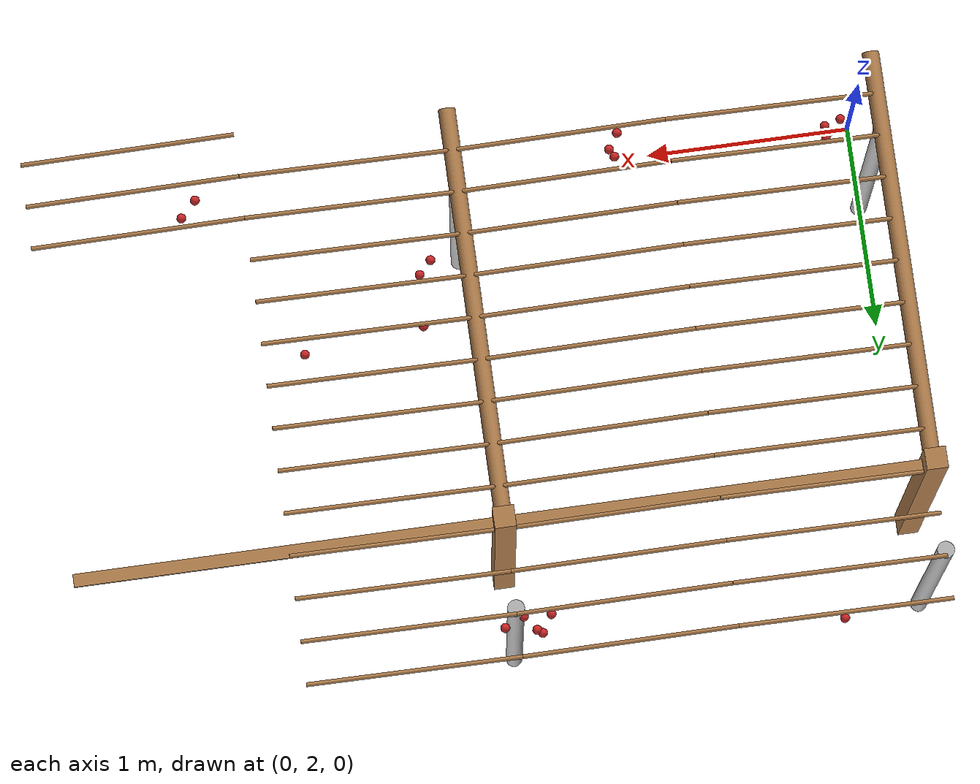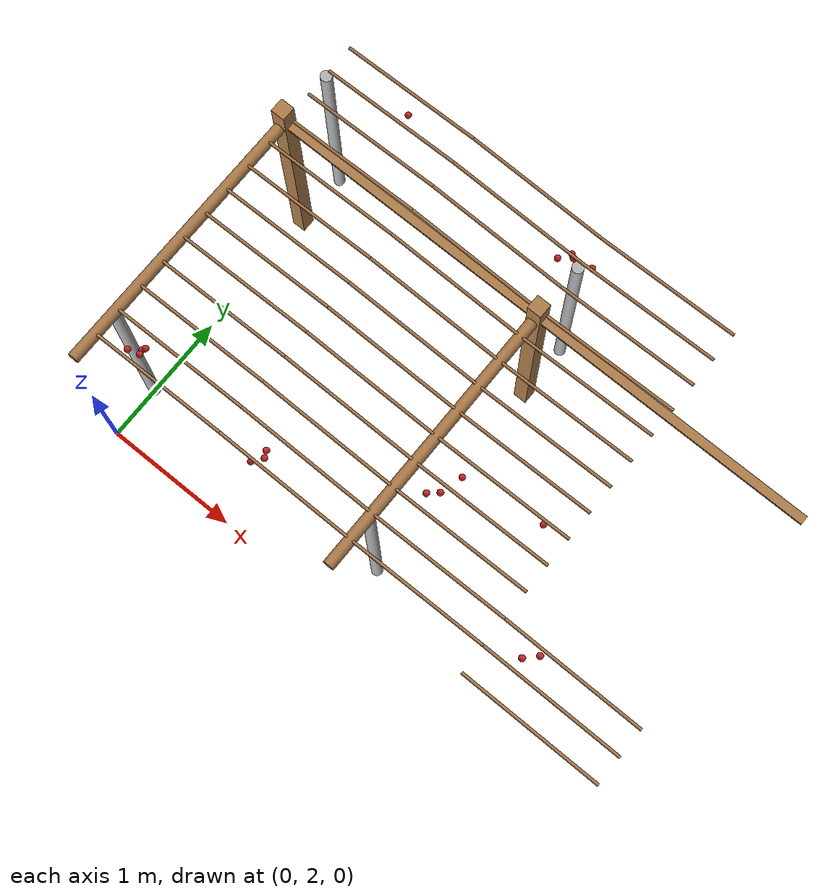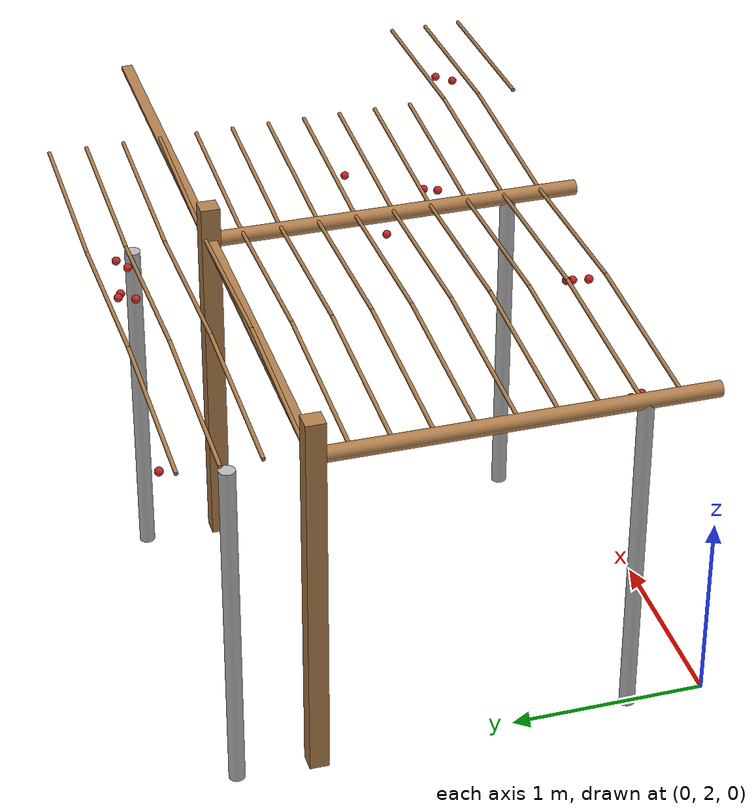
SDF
<sdf version="1.4">
 <model name="pergola">
  <include><name>post_2</name><pose>0.0 4.0 0 0 0 0</pose><uri>model://post</uri></include>
  <include><name>post_13</name><pose>2.0 4.0 0 0 0 0</pose><uri>model://post</uri></include>
  <link name="beam_2">
   <pose>1.0 4.0 1.81 0 0 0</pose>
   <collision name="collision"><geometry><box><size>2.0 0.06 0.02</size></box></geometry></collision>
   <visual name="visual">
    <geometry><box><size>2.0 0.06 0.02</size></box></geometry>
    <material><script><name>Gazebo/Wood</name></script></material>
   </visual>
   <inertial>
    <mass>5</mass>
    <inertia>
     <ixx>0.0016666666666666668</ixx>
     <ixy>0.0</ixy>
     <ixz>0.0</ixz>
     <iyy>1.6681666666666664</iyy>
     <iyz>0.0</iyz>
     <izz>1.6668333333333332</izz>
    </inertia>
   </inertial>
  </link>
  <link name="beam_13">
   <pose>3.0 4.0 1.81 0 0 0</pose>
   <collision name="collision"><geometry><box><size>2.0 0.06 0.02</size></box></geometry></collision>
   <visual name="visual">
    <geometry><box><size>2.0 0.06 0.02</size></box></geometry>
    <material><script><name>Gazebo/Wood</name></script></material>
   </visual>
   <inertial>
    <mass>5</mass>
    <inertia>
     <ixx>0.0016666666666666668</ixx>
     <ixy>0.0</ixy>
     <ixz>0.0</ixz>
     <iyy>1.6681666666666664</iyy>
     <iyz>0.0</iyz>
     <izz>1.6668333333333332</izz>
    </inertia>
   </inertial>
  </link>
  <include><name>tree_1</name><pose>0.0 2.4 0 0 0 0</pose><uri>model://tree_trunk</uri></include>
  <include><name>tree_2</name><pose>0.0 4.4 0 0 0 0</pose><uri>model://tree_trunk</uri></include>
  <include><name>tree_11</name><pose>2.0 2.4 0 0 0 0</pose><uri>model://tree_trunk</uri></include>
  <include><name>tree_12</name><pose>2.0 4.4 0 0 0 0</pose><uri>model://tree_trunk</uri></include>
  <link name="baseBranch_1">
   <pose>0.0 3.0 1.8 1.5707963267948966 0 0</pose>
   <collision name="collision">
    <geometry><cylinder><radius>0.04</radius><length>1.94</length></cylinder></geometry>
   </collision>
   <visual name="visual">
    <geometry><cylinder><radius>0.04</radius><length>1.94</length></cylinder></geometry>
    <material><script><name>Gazebo/WoodFloor</name></script></material>
   </visual>
   <inertial>
    <mass>10</mass>
    <inertia>
     <ixx>3.140333333333333</ixx>
     <ixy>0.0</ixy>
     <ixz>0.0</ixz>
     <iyy>3.140333333333333</iyy>
     <iyz>0.0</iyz>
     <izz>0.008</izz>
    </inertia>
   </inertial>
  </link>
  <link name="baseBranch_11">
   <pose>2.0 3.0 1.8 1.5707963267948966 0 0</pose>
   <collision name="collision">
    <geometry><cylinder><radius>0.04</radius><length>1.94</length></cylinder></geometry>
   </collision>
   <visual name="visual">
    <geometry><cylinder><radius>0.04</radius><length>1.94</length></cylinder></geometry>
    <material><script><name>Gazebo/WoodFloor</name></script></material>
   </visual>
   <inertial>
    <mass>10</mass>
    <inertia>
     <ixx>3.140333333333333</ixx>
     <ixy>0.0</ixy>
     <ixz>0.0</ixz>
     <iyy>3.140333333333333</iyy>
     <iyz>0.0</iyz>
     <izz>0.008</izz>
    </inertia>
   </inertial>
  </link>
  <link name="vine_22">
   <pose>0.5 2.23 1.85 0 1.5208379310729538 0</pose>
   <collision name="collision">
    <geometry><cylinder><radius>0.01</radius><length>1.0012492197250393</length></cylinder></geometry>
   </collision>
   <visual name="visual">
    <geometry><cylinder><radius>0.01</radius><length>1.0012492197250393</length></cylinder></geometry>
    <material><script><name>Gazebo/WoodFloor</name></script></material>
   </visual>
   <inertial>
    <mass>5</mass>
    <inertia>
     <ixx>0.41783333333333345</ixx>
     <ixy>0.0</ixy>
     <ixz>0.0</ixz>
     <iyy>0.41783333333333345</iyy>
     <iyz>0.0</iyz>
     <izz>0.00025</izz>
    </inertia>
   </inertial>
  </link>
  <link name="vine_23">
   <pose>1.5 2.23 1.85 0 -1.5208379310729538 0</pose>
   <collision name="collision">
    <geometry><cylinder><radius>0.01</radius><length>1.0012492197250393</length></cylinder></geometry>
   </collision>
   <visual name="visual">
    <geometry><cylinder><radius>0.01</radius><length>1.0012492197250393</length></cylinder></geometry>
    <material><script><name>Gazebo/WoodFloor</name></script></material>
   </visual>
   <inertial>
    <mass>5</mass>
    <inertia>
     <ixx>0.41783333333333345</ixx>
     <ixy>0.0</ixy>
     <ixz>0.0</ixz>
     <iyy>0.41783333333333345</iyy>
     <iyz>0.0</iyz>
     <izz>0.00025</izz>
    </inertia>
   </inertial>
  </link>
  <link name="vine_24">
   <pose>0.5 2.43 1.85 0 1.5208379310729538 0</pose>
   <collision name="collision">
    <geometry><cylinder><radius>0.01</radius><length>1.0012492197250393</length></cylinder></geometry>
   </collision>
   <visual name="visual">
    <geometry><cylinder><radius>0.01</radius><length>1.0012492197250393</length></cylinder></geometry>
    <material><script><name>Gazebo/WoodFloor</name></script></material>
   </visual>
   <inertial>
    <mass>5</mass>
    <inertia>
     <ixx>0.41783333333333345</ixx>
     <ixy>0.0</ixy>
     <ixz>0.0</ixz>
     <iyy>0.41783333333333345</iyy>
     <iyz>0.0</iyz>
     <izz>0.00025</izz>
    </inertia>
   </inertial>
  </link>
  <link name="vine_25">
   <pose>1.5 2.43 1.85 0 -1.5208379310729538 0</pose>
   <collision name="collision">
    <geometry><cylinder><radius>0.01</radius><length>1.0012492197250393</length></cylinder></geometry>
   </collision>
   <visual name="visual">
    <geometry><cylinder><radius>0.01</radius><length>1.0012492197250393</length></cylinder></geometry>
    <material><script><name>Gazebo/WoodFloor</name></script></material>
   </visual>
   <inertial>
    <mass>5</mass>
    <inertia>
     <ixx>0.41783333333333345</ixx>
     <ixy>0.0</ixy>
     <ixz>0.0</ixz>
     <iyy>0.41783333333333345</iyy>
     <iyz>0.0</iyz>
     <izz>0.00025</izz>
    </inertia>
   </inertial>
  </link>
  <link name="vine_26">
   <pose>0.5 2.63 1.85 0 1.5208379310729538 0</pose>
   <collision name="collision">
    <geometry><cylinder><radius>0.01</radius><length>1.0012492197250393</length></cylinder></geometry>
   </collision>
   <visual name="visual">
    <geometry><cylinder><radius>0.01</radius><length>1.0012492197250393</length></cylinder></geometry>
    <material><script><name>Gazebo/WoodFloor</name></script></material>
   </visual>
   <inertial>
    <mass>5</mass>
    <inertia>
     <ixx>0.41783333333333345</ixx>
     <ixy>0.0</ixy>
     <ixz>0.0</ixz>
     <iyy>0.41783333333333345</iyy>
     <iyz>0.0</iyz>
     <izz>0.00025</izz>
    </inertia>
   </inertial>
  </link>
  <link name="vine_27">
   <pose>1.5 2.63 1.85 0 -1.5208379310729538 0</pose>
   <collision name="collision">
    <geometry><cylinder><radius>0.01</radius><length>1.0012492197250393</length></cylinder></geometry>
   </collision>
   <visual name="visual">
    <geometry><cylinder><radius>0.01</radius><length>1.0012492197250393</length></cylinder></geometry>
    <material><script><name>Gazebo/WoodFloor</name></script></material>
   </visual>
   <inertial>
    <mass>5</mass>
    <inertia>
     <ixx>0.41783333333333345</ixx>
     <ixy>0.0</ixy>
     <ixz>0.0</ixz>
     <iyy>0.41783333333333345</iyy>
     <iyz>0.0</iyz>
     <izz>0.00025</izz>
    </inertia>
   </inertial>
  </link>
  <link name="vine_28">
   <pose>0.5 2.83 1.85 0 1.5208379310729538 0</pose>
   <collision name="collision">
    <geometry><cylinder><radius>0.01</radius><length>1.0012492197250393</length></cylinder></geometry>
   </collision>
   <visual name="visual">
    <geometry><cylinder><radius>0.01</radius><length>1.0012492197250393</length></cylinder></geometry>
    <material><script><name>Gazebo/WoodFloor</name></script></material>
   </visual>
   <inertial>
    <mass>5</mass>
    <inertia>
     <ixx>0.41783333333333345</ixx>
     <ixy>0.0</ixy>
     <ixz>0.0</ixz>
     <iyy>0.41783333333333345</iyy>
     <iyz>0.0</iyz>
     <izz>0.00025</izz>
    </inertia>
   </inertial>
  </link>
  <link name="vine_29">
   <pose>1.5 2.83 1.85 0 -1.5208379310729538 0</pose>
   <collision name="collision">
    <geometry><cylinder><radius>0.01</radius><length>1.0012492197250393</length></cylinder></geometry>
   </collision>
   <visual name="visual">
    <geometry><cylinder><radius>0.01</radius><length>1.0012492197250393</length></cylinder></geometry>
    <material><script><name>Gazebo/WoodFloor</name></script></material>
   </visual>
   <inertial>
    <mass>5</mass>
    <inertia>
     <ixx>0.41783333333333345</ixx>
     <ixy>0.0</ixy>
     <ixz>0.0</ixz>
     <iyy>0.41783333333333345</iyy>
     <iyz>0.0</iyz>
     <izz>0.00025</izz>
    </inertia>
   </inertial>
  </link>
  <link name="vine_30">
   <pose>0.5 3.03 1.85 0 1.5208379310729538 0</pose>
   <collision name="collision">
    <geometry><cylinder><radius>0.01</radius><length>1.0012492197250393</length></cylinder></geometry>
   </collision>
   <visual name="visual">
    <geometry><cylinder><radius>0.01</radius><length>1.0012492197250393</length></cylinder></geometry>
    <material><script><name>Gazebo/WoodFloor</name></script></material>
   </visual>
   <inertial>
    <mass>5</mass>
    <inertia>
     <ixx>0.41783333333333345</ixx>
     <ixy>0.0</ixy>
     <ixz>0.0</ixz>
     <iyy>0.41783333333333345</iyy>
     <iyz>0.0</iyz>
     <izz>0.00025</izz>
    </inertia>
   </inertial>
  </link>
  <link name="vine_31">
   <pose>1.5 3.03 1.85 0 -1.5208379310729538 0</pose>
   <collision name="collision">
    <geometry><cylinder><radius>0.01</radius><length>1.0012492197250393</length></cylinder></geometry>
   </collision>
   <visual name="visual">
    <geometry><cylinder><radius>0.01</radius><length>1.0012492197250393</length></cylinder></geometry>
    <material><script><name>Gazebo/WoodFloor</name></script></material>
   </visual>
   <inertial>
    <mass>5</mass>
    <inertia>
     <ixx>0.41783333333333345</ixx>
     <ixy>0.0</ixy>
     <ixz>0.0</ixz>
     <iyy>0.41783333333333345</iyy>
     <iyz>0.0</iyz>
     <izz>0.00025</izz>
    </inertia>
   </inertial>
  </link>
  <link name="vine_32">
   <pose>0.5 3.23 1.85 0 1.5208379310729538 0</pose>
   <collision name="collision">
    <geometry><cylinder><radius>0.01</radius><length>1.0012492197250393</length></cylinder></geometry>
   </collision>
   <visual name="visual">
    <geometry><cylinder><radius>0.01</radius><length>1.0012492197250393</length></cylinder></geometry>
    <material><script><name>Gazebo/WoodFloor</name></script></material>
   </visual>
   <inertial>
    <mass>5</mass>
    <inertia>
     <ixx>0.41783333333333345</ixx>
     <ixy>0.0</ixy>
     <ixz>0.0</ixz>
     <iyy>0.41783333333333345</iyy>
     <iyz>0.0</iyz>
     <izz>0.00025</izz>
    </inertia>
   </inertial>
  </link>
  <link name="vine_33">
   <pose>1.5 3.23 1.85 0 -1.5208379310729538 0</pose>
   <collision name="collision">
    <geometry><cylinder><radius>0.01</radius><length>1.0012492197250393</length></cylinder></geometry>
   </collision>
   <visual name="visual">
    <geometry><cylinder><radius>0.01</radius><length>1.0012492197250393</length></cylinder></geometry>
    <material><script><name>Gazebo/WoodFloor</name></script></material>
   </visual>
   <inertial>
    <mass>5</mass>
    <inertia>
     <ixx>0.41783333333333345</ixx>
     <ixy>0.0</ixy>
     <ixz>0.0</ixz>
     <iyy>0.41783333333333345</iyy>
     <iyz>0.0</iyz>
     <izz>0.00025</izz>
    </inertia>
   </inertial>
  </link>
  <link name="vine_34">
   <pose>0.5 3.43 1.85 0 1.5208379310729538 0</pose>
   <collision name="collision">
    <geometry><cylinder><radius>0.01</radius><length>1.0012492197250393</length></cylinder></geometry>
   </collision>
   <visual name="visual">
    <geometry><cylinder><radius>0.01</radius><length>1.0012492197250393</length></cylinder></geometry>
    <material><script><name>Gazebo/WoodFloor</name></script></material>
   </visual>
   <inertial>
    <mass>5</mass>
    <inertia>
     <ixx>0.41783333333333345</ixx>
     <ixy>0.0</ixy>
     <ixz>0.0</ixz>
     <iyy>0.41783333333333345</iyy>
     <iyz>0.0</iyz>
     <izz>0.00025</izz>
    </inertia>
   </inertial>
  </link>
  <link name="vine_35">
   <pose>1.5 3.43 1.85 0 -1.5208379310729538 0</pose>
   <collision name="collision">
    <geometry><cylinder><radius>0.01</radius><length>1.0012492197250393</length></cylinder></geometry>
   </collision>
   <visual name="visual">
    <geometry><cylinder><radius>0.01</radius><length>1.0012492197250393</length></cylinder></geometry>
    <material><script><name>Gazebo/WoodFloor</name></script></material>
   </visual>
   <inertial>
    <mass>5</mass>
    <inertia>
     <ixx>0.41783333333333345</ixx>
     <ixy>0.0</ixy>
     <ixz>0.0</ixz>
     <iyy>0.41783333333333345</iyy>
     <iyz>0.0</iyz>
     <izz>0.00025</izz>
    </inertia>
   </inertial>
  </link>
  <link name="vine_36">
   <pose>0.5 3.63 1.85 0 1.5208379310729538 0</pose>
   <collision name="collision">
    <geometry><cylinder><radius>0.01</radius><length>1.0012492197250393</length></cylinder></geometry>
   </collision>
   <visual name="visual">
    <geometry><cylinder><radius>0.01</radius><length>1.0012492197250393</length></cylinder></geometry>
    <material><script><name>Gazebo/WoodFloor</name></script></material>
   </visual>
   <inertial>
    <mass>5</mass>
    <inertia>
     <ixx>0.41783333333333345</ixx>
     <ixy>0.0</ixy>
     <ixz>0.0</ixz>
     <iyy>0.41783333333333345</iyy>
     <iyz>0.0</iyz>
     <izz>0.00025</izz>
    </inertia>
   </inertial>
  </link>
  <link name="vine_37">
   <pose>1.5 3.63 1.85 0 -1.5208379310729538 0</pose>
   <collision name="collision">
    <geometry><cylinder><radius>0.01</radius><length>1.0012492197250393</length></cylinder></geometry>
   </collision>
   <visual name="visual">
    <geometry><cylinder><radius>0.01</radius><length>1.0012492197250393</length></cylinder></geometry>
    <material><script><name>Gazebo/WoodFloor</name></script></material>
   </visual>
   <inertial>
    <mass>5</mass>
    <inertia>
     <ixx>0.41783333333333345</ixx>
     <ixy>0.0</ixy>
     <ixz>0.0</ixz>
     <iyy>0.41783333333333345</iyy>
     <iyz>0.0</iyz>
     <izz>0.00025</izz>
    </inertia>
   </inertial>
  </link>
  <link name="vine_38">
   <pose>0.5 3.83 1.85 0 1.5208379310729538 0</pose>
   <collision name="collision">
    <geometry><cylinder><radius>0.01</radius><length>1.0012492197250393</length></cylinder></geometry>
   </collision>
   <visual name="visual">
    <geometry><cylinder><radius>0.01</radius><length>1.0012492197250393</length></cylinder></geometry>
    <material><script><name>Gazebo/WoodFloor</name></script></material>
   </visual>
   <inertial>
    <mass>5</mass>
    <inertia>
     <ixx>0.41783333333333345</ixx>
     <ixy>0.0</ixy>
     <ixz>0.0</ixz>
     <iyy>0.41783333333333345</iyy>
     <iyz>0.0</iyz>
     <izz>0.00025</izz>
    </inertia>
   </inertial>
  </link>
  <link name="vine_39">
   <pose>1.5 3.83 1.85 0 -1.5208379310729538 0</pose>
   <collision name="collision">
    <geometry><cylinder><radius>0.01</radius><length>1.0012492197250393</length></cylinder></geometry>
   </collision>
   <visual name="visual">
    <geometry><cylinder><radius>0.01</radius><length>1.0012492197250393</length></cylinder></geometry>
    <material><script><name>Gazebo/WoodFloor</name></script></material>
   </visual>
   <inertial>
    <mass>5</mass>
    <inertia>
     <ixx>0.41783333333333345</ixx>
     <ixy>0.0</ixy>
     <ixz>0.0</ixz>
     <iyy>0.41783333333333345</iyy>
     <iyz>0.0</iyz>
     <izz>0.00025</izz>
    </inertia>
   </inertial>
  </link>
  <link name="vine_40">
   <pose>0.5 4.03 1.85 0 1.5208379310729538 0</pose>
   <collision name="collision">
    <geometry><cylinder><radius>0.01</radius><length>1.0012492197250393</length></cylinder></geometry>
   </collision>
   <visual name="visual">
    <geometry><cylinder><radius>0.01</radius><length>1.0012492197250393</length></cylinder></geometry>
    <material><script><name>Gazebo/WoodFloor</name></script></material>
   </visual>
   <inertial>
    <mass>5</mass>
    <inertia>
     <ixx>0.41783333333333345</ixx>
     <ixy>0.0</ixy>
     <ixz>0.0</ixz>
     <iyy>0.41783333333333345</iyy>
     <iyz>0.0</iyz>
     <izz>0.00025</izz>
    </inertia>
   </inertial>
  </link>
  <link name="vine_41">
   <pose>1.5 4.03 1.85 0 -1.5208379310729538 0</pose>
   <collision name="collision">
    <geometry><cylinder><radius>0.01</radius><length>1.0012492197250393</length></cylinder></geometry>
   </collision>
   <visual name="visual">
    <geometry><cylinder><radius>0.01</radius><length>1.0012492197250393</length></cylinder></geometry>
    <material><script><name>Gazebo/WoodFloor</name></script></material>
   </visual>
   <inertial>
    <mass>5</mass>
    <inertia>
     <ixx>0.41783333333333345</ixx>
     <ixy>0.0</ixy>
     <ixz>0.0</ixz>
     <iyy>0.41783333333333345</iyy>
     <iyz>0.0</iyz>
     <izz>0.00025</izz>
    </inertia>
   </inertial>
  </link>
  <link name="vine_42">
   <pose>0.5 4.23 1.85 0 1.5208379310729538 0</pose>
   <collision name="collision">
    <geometry><cylinder><radius>0.01</radius><length>1.0012492197250393</length></cylinder></geometry>
   </collision>
   <visual name="visual">
    <geometry><cylinder><radius>0.01</radius><length>1.0012492197250393</length></cylinder></geometry>
    <material><script><name>Gazebo/WoodFloor</name></script></material>
   </visual>
   <inertial>
    <mass>5</mass>
    <inertia>
     <ixx>0.41783333333333345</ixx>
     <ixy>0.0</ixy>
     <ixz>0.0</ixz>
     <iyy>0.41783333333333345</iyy>
     <iyz>0.0</iyz>
     <izz>0.00025</izz>
    </inertia>
   </inertial>
  </link>
  <link name="vine_43">
   <pose>1.5 4.23 1.85 0 -1.5208379310729538 0</pose>
   <collision name="collision">
    <geometry><cylinder><radius>0.01</radius><length>1.0012492197250393</length></cylinder></geometry>
   </collision>
   <visual name="visual">
    <geometry><cylinder><radius>0.01</radius><length>1.0012492197250393</length></cylinder></geometry>
    <material><script><name>Gazebo/WoodFloor</name></script></material>
   </visual>
   <inertial>
    <mass>5</mass>
    <inertia>
     <ixx>0.41783333333333345</ixx>
     <ixy>0.0</ixy>
     <ixz>0.0</ixz>
     <iyy>0.41783333333333345</iyy>
     <iyz>0.0</iyz>
     <izz>0.00025</izz>
    </inertia>
   </inertial>
  </link>
  <link name="vine_44">
   <pose>0.5 4.430000000000001 1.85 0 1.5208379310729538 0</pose>
   <collision name="collision">
    <geometry><cylinder><radius>0.01</radius><length>1.0012492197250393</length></cylinder></geometry>
   </collision>
   <visual name="visual">
    <geometry><cylinder><radius>0.01</radius><length>1.0012492197250393</length></cylinder></geometry>
    <material><script><name>Gazebo/WoodFloor</name></script></material>
   </visual>
   <inertial>
    <mass>5</mass>
    <inertia>
     <ixx>0.41783333333333345</ixx>
     <ixy>0.0</ixy>
     <ixz>0.0</ixz>
     <iyy>0.41783333333333345</iyy>
     <iyz>0.0</iyz>
     <izz>0.00025</izz>
    </inertia>
   </inertial>
  </link>
  <link name="vine_45">
   <pose>1.5 4.430000000000001 1.85 0 -1.5208379310729538 0</pose>
   <collision name="collision">
    <geometry><cylinder><radius>0.01</radius><length>1.0012492197250393</length></cylinder></geometry>
   </collision>
   <visual name="visual">
    <geometry><cylinder><radius>0.01</radius><length>1.0012492197250393</length></cylinder></geometry>
    <material><script><name>Gazebo/WoodFloor</name></script></material>
   </visual>
   <inertial>
    <mass>5</mass>
    <inertia>
     <ixx>0.41783333333333345</ixx>
     <ixy>0.0</ixy>
     <ixz>0.0</ixz>
     <iyy>0.41783333333333345</iyy>
     <iyz>0.0</iyz>
     <izz>0.00025</izz>
    </inertia>
   </inertial>
  </link>
  <link name="vine_46">
   <pose>0.5 4.630000000000001 1.85 0 1.5208379310729538 0</pose>
   <collision name="collision">
    <geometry><cylinder><radius>0.01</radius><length>1.0012492197250393</length></cylinder></geometry>
   </collision>
   <visual name="visual">
    <geometry><cylinder><radius>0.01</radius><length>1.0012492197250393</length></cylinder></geometry>
    <material><script><name>Gazebo/WoodFloor</name></script></material>
   </visual>
   <inertial>
    <mass>5</mass>
    <inertia>
     <ixx>0.41783333333333345</ixx>
     <ixy>0.0</ixy>
     <ixz>0.0</ixz>
     <iyy>0.41783333333333345</iyy>
     <iyz>0.0</iyz>
     <izz>0.00025</izz>
    </inertia>
   </inertial>
  </link>
  <link name="vine_47">
   <pose>1.5 4.630000000000001 1.85 0 -1.5208379310729538 0</pose>
   <collision name="collision">
    <geometry><cylinder><radius>0.01</radius><length>1.0012492197250393</length></cylinder></geometry>
   </collision>
   <visual name="visual">
    <geometry><cylinder><radius>0.01</radius><length>1.0012492197250393</length></cylinder></geometry>
    <material><script><name>Gazebo/WoodFloor</name></script></material>
   </visual>
   <inertial>
    <mass>5</mass>
    <inertia>
     <ixx>0.41783333333333345</ixx>
     <ixy>0.0</ixy>
     <ixz>0.0</ixz>
     <iyy>0.41783333333333345</iyy>
     <iyz>0.0</iyz>
     <izz>0.00025</izz>
    </inertia>
   </inertial>
  </link>
  <link name="vine_221">
   <pose>3.5 2.03 1.85 0 -1.5208379310729538 0</pose>
   <collision name="collision">
    <geometry><cylinder><radius>0.01</radius><length>1.0012492197250393</length></cylinder></geometry>
   </collision>
   <visual name="visual">
    <geometry><cylinder><radius>0.01</radius><length>1.0012492197250393</length></cylinder></geometry>
    <material><script><name>Gazebo/WoodFloor</name></script></material>
   </visual>
   <inertial>
    <mass>5</mass>
    <inertia>
     <ixx>0.41783333333333345</ixx>
     <ixy>0.0</ixy>
     <ixz>0.0</ixz>
     <iyy>0.41783333333333345</iyy>
     <iyz>0.0</iyz>
     <izz>0.00025</izz>
    </inertia>
   </inertial>
  </link>
  <link name="vine_222">
   <pose>2.5 2.23 1.85 0 1.5208379310729538 0</pose>
   <collision name="collision">
    <geometry><cylinder><radius>0.01</radius><length>1.0012492197250393</length></cylinder></geometry>
   </collision>
   <visual name="visual">
    <geometry><cylinder><radius>0.01</radius><length>1.0012492197250393</length></cylinder></geometry>
    <material><script><name>Gazebo/WoodFloor</name></script></material>
   </visual>
   <inertial>
    <mass>5</mass>
    <inertia>
     <ixx>0.41783333333333345</ixx>
     <ixy>0.0</ixy>
     <ixz>0.0</ixz>
     <iyy>0.41783333333333345</iyy>
     <iyz>0.0</iyz>
     <izz>0.00025</izz>
    </inertia>
   </inertial>
  </link>
  <link name="vine_223">
   <pose>3.5 2.23 1.85 0 -1.5208379310729538 0</pose>
   <collision name="collision">
    <geometry><cylinder><radius>0.01</radius><length>1.0012492197250393</length></cylinder></geometry>
   </collision>
   <visual name="visual">
    <geometry><cylinder><radius>0.01</radius><length>1.0012492197250393</length></cylinder></geometry>
    <material><script><name>Gazebo/WoodFloor</name></script></material>
   </visual>
   <inertial>
    <mass>5</mass>
    <inertia>
     <ixx>0.41783333333333345</ixx>
     <ixy>0.0</ixy>
     <ixz>0.0</ixz>
     <iyy>0.41783333333333345</iyy>
     <iyz>0.0</iyz>
     <izz>0.00025</izz>
    </inertia>
   </inertial>
  </link>
  <link name="vine_224">
   <pose>2.5 2.43 1.85 0 1.5208379310729538 0</pose>
   <collision name="collision">
    <geometry><cylinder><radius>0.01</radius><length>1.0012492197250393</length></cylinder></geometry>
   </collision>
   <visual name="visual">
    <geometry><cylinder><radius>0.01</radius><length>1.0012492197250393</length></cylinder></geometry>
    <material><script><name>Gazebo/WoodFloor</name></script></material>
   </visual>
   <inertial>
    <mass>5</mass>
    <inertia>
     <ixx>0.41783333333333345</ixx>
     <ixy>0.0</ixy>
     <ixz>0.0</ixz>
     <iyy>0.41783333333333345</iyy>
     <iyz>0.0</iyz>
     <izz>0.00025</izz>
    </inertia>
   </inertial>
  </link>
  <link name="vine_225">
   <pose>3.5 2.43 1.85 0 -1.5208379310729538 0</pose>
   <collision name="collision">
    <geometry><cylinder><radius>0.01</radius><length>1.0012492197250393</length></cylinder></geometry>
   </collision>
   <visual name="visual">
    <geometry><cylinder><radius>0.01</radius><length>1.0012492197250393</length></cylinder></geometry>
    <material><script><name>Gazebo/WoodFloor</name></script></material>
   </visual>
   <inertial>
    <mass>5</mass>
    <inertia>
     <ixx>0.41783333333333345</ixx>
     <ixy>0.0</ixy>
     <ixz>0.0</ixz>
     <iyy>0.41783333333333345</iyy>
     <iyz>0.0</iyz>
     <izz>0.00025</izz>
    </inertia>
   </inertial>
  </link>
  <link name="vine_226">
   <pose>2.5 2.63 1.85 0 1.5208379310729538 0</pose>
   <collision name="collision">
    <geometry><cylinder><radius>0.01</radius><length>1.0012492197250393</length></cylinder></geometry>
   </collision>
   <visual name="visual">
    <geometry><cylinder><radius>0.01</radius><length>1.0012492197250393</length></cylinder></geometry>
    <material><script><name>Gazebo/WoodFloor</name></script></material>
   </visual>
   <inertial>
    <mass>5</mass>
    <inertia>
     <ixx>0.41783333333333345</ixx>
     <ixy>0.0</ixy>
     <ixz>0.0</ixz>
     <iyy>0.41783333333333345</iyy>
     <iyz>0.0</iyz>
     <izz>0.00025</izz>
    </inertia>
   </inertial>
  </link>
  <link name="vine_228">
   <pose>2.5 2.83 1.85 0 1.5208379310729538 0</pose>
   <collision name="collision">
    <geometry><cylinder><radius>0.01</radius><length>1.0012492197250393</length></cylinder></geometry>
   </collision>
   <visual name="visual">
    <geometry><cylinder><radius>0.01</radius><length>1.0012492197250393</length></cylinder></geometry>
    <material><script><name>Gazebo/WoodFloor</name></script></material>
   </visual>
   <inertial>
    <mass>5</mass>
    <inertia>
     <ixx>0.41783333333333345</ixx>
     <ixy>0.0</ixy>
     <ixz>0.0</ixz>
     <iyy>0.41783333333333345</iyy>
     <iyz>0.0</iyz>
     <izz>0.00025</izz>
    </inertia>
   </inertial>
  </link>
  <link name="vine_230">
   <pose>2.5 3.03 1.85 0 1.5208379310729538 0</pose>
   <collision name="collision">
    <geometry><cylinder><radius>0.01</radius><length>1.0012492197250393</length></cylinder></geometry>
   </collision>
   <visual name="visual">
    <geometry><cylinder><radius>0.01</radius><length>1.0012492197250393</length></cylinder></geometry>
    <material><script><name>Gazebo/WoodFloor</name></script></material>
   </visual>
   <inertial>
    <mass>5</mass>
    <inertia>
     <ixx>0.41783333333333345</ixx>
     <ixy>0.0</ixy>
     <ixz>0.0</ixz>
     <iyy>0.41783333333333345</iyy>
     <iyz>0.0</iyz>
     <izz>0.00025</izz>
    </inertia>
   </inertial>
  </link>
  <link name="vine_232">
   <pose>2.5 3.23 1.85 0 1.5208379310729538 0</pose>
   <collision name="collision">
    <geometry><cylinder><radius>0.01</radius><length>1.0012492197250393</length></cylinder></geometry>
   </collision>
   <visual name="visual">
    <geometry><cylinder><radius>0.01</radius><length>1.0012492197250393</length></cylinder></geometry>
    <material><script><name>Gazebo/WoodFloor</name></script></material>
   </visual>
   <inertial>
    <mass>5</mass>
    <inertia>
     <ixx>0.41783333333333345</ixx>
     <ixy>0.0</ixy>
     <ixz>0.0</ixz>
     <iyy>0.41783333333333345</iyy>
     <iyz>0.0</iyz>
     <izz>0.00025</izz>
    </inertia>
   </inertial>
  </link>
  <link name="vine_234">
   <pose>2.5 3.43 1.85 0 1.5208379310729538 0</pose>
   <collision name="collision">
    <geometry><cylinder><radius>0.01</radius><length>1.0012492197250393</length></cylinder></geometry>
   </collision>
   <visual name="visual">
    <geometry><cylinder><radius>0.01</radius><length>1.0012492197250393</length></cylinder></geometry>
    <material><script><name>Gazebo/WoodFloor</name></script></material>
   </visual>
   <inertial>
    <mass>5</mass>
    <inertia>
     <ixx>0.41783333333333345</ixx>
     <ixy>0.0</ixy>
     <ixz>0.0</ixz>
     <iyy>0.41783333333333345</iyy>
     <iyz>0.0</iyz>
     <izz>0.00025</izz>
    </inertia>
   </inertial>
  </link>
  <link name="vine_236">
   <pose>2.5 3.63 1.85 0 1.5208379310729538 0</pose>
   <collision name="collision">
    <geometry><cylinder><radius>0.01</radius><length>1.0012492197250393</length></cylinder></geometry>
   </collision>
   <visual name="visual">
    <geometry><cylinder><radius>0.01</radius><length>1.0012492197250393</length></cylinder></geometry>
    <material><script><name>Gazebo/WoodFloor</name></script></material>
   </visual>
   <inertial>
    <mass>5</mass>
    <inertia>
     <ixx>0.41783333333333345</ixx>
     <ixy>0.0</ixy>
     <ixz>0.0</ixz>
     <iyy>0.41783333333333345</iyy>
     <iyz>0.0</iyz>
     <izz>0.00025</izz>
    </inertia>
   </inertial>
  </link>
  <link name="vine_238">
   <pose>2.5 3.83 1.85 0 1.5208379310729538 0</pose>
   <collision name="collision">
    <geometry><cylinder><radius>0.01</radius><length>1.0012492197250393</length></cylinder></geometry>
   </collision>
   <visual name="visual">
    <geometry><cylinder><radius>0.01</radius><length>1.0012492197250393</length></cylinder></geometry>
    <material><script><name>Gazebo/WoodFloor</name></script></material>
   </visual>
   <inertial>
    <mass>5</mass>
    <inertia>
     <ixx>0.41783333333333345</ixx>
     <ixy>0.0</ixy>
     <ixz>0.0</ixz>
     <iyy>0.41783333333333345</iyy>
     <iyz>0.0</iyz>
     <izz>0.00025</izz>
    </inertia>
   </inertial>
  </link>
  <link name="vine_240">
   <pose>2.5 4.03 1.85 0 1.5208379310729538 0</pose>
   <collision name="collision">
    <geometry><cylinder><radius>0.01</radius><length>1.0012492197250393</length></cylinder></geometry>
   </collision>
   <visual name="visual">
    <geometry><cylinder><radius>0.01</radius><length>1.0012492197250393</length></cylinder></geometry>
    <material><script><name>Gazebo/WoodFloor</name></script></material>
   </visual>
   <inertial>
    <mass>5</mass>
    <inertia>
     <ixx>0.41783333333333345</ixx>
     <ixy>0.0</ixy>
     <ixz>0.0</ixz>
     <iyy>0.41783333333333345</iyy>
     <iyz>0.0</iyz>
     <izz>0.00025</izz>
    </inertia>
   </inertial>
  </link>
  <link name="vine_242">
   <pose>2.5 4.23 1.85 0 1.5208379310729538 0</pose>
   <collision name="collision">
    <geometry><cylinder><radius>0.01</radius><length>1.0012492197250393</length></cylinder></geometry>
   </collision>
   <visual name="visual">
    <geometry><cylinder><radius>0.01</radius><length>1.0012492197250393</length></cylinder></geometry>
    <material><script><name>Gazebo/WoodFloor</name></script></material>
   </visual>
   <inertial>
    <mass>5</mass>
    <inertia>
     <ixx>0.41783333333333345</ixx>
     <ixy>0.0</ixy>
     <ixz>0.0</ixz>
     <iyy>0.41783333333333345</iyy>
     <iyz>0.0</iyz>
     <izz>0.00025</izz>
    </inertia>
   </inertial>
  </link>
  <link name="vine_244">
   <pose>2.5 4.430000000000001 1.85 0 1.5208379310729538 0</pose>
   <collision name="collision">
    <geometry><cylinder><radius>0.01</radius><length>1.0012492197250393</length></cylinder></geometry>
   </collision>
   <visual name="visual">
    <geometry><cylinder><radius>0.01</radius><length>1.0012492197250393</length></cylinder></geometry>
    <material><script><name>Gazebo/WoodFloor</name></script></material>
   </visual>
   <inertial>
    <mass>5</mass>
    <inertia>
     <ixx>0.41783333333333345</ixx>
     <ixy>0.0</ixy>
     <ixz>0.0</ixz>
     <iyy>0.41783333333333345</iyy>
     <iyz>0.0</iyz>
     <izz>0.00025</izz>
    </inertia>
   </inertial>
  </link>
  <link name="vine_246">
   <pose>2.5 4.630000000000001 1.85 0 1.5208379310729538 0</pose>
   <collision name="collision">
    <geometry><cylinder><radius>0.01</radius><length>1.0012492197250393</length></cylinder></geometry>
   </collision>
   <visual name="visual">
    <geometry><cylinder><radius>0.01</radius><length>1.0012492197250393</length></cylinder></geometry>
    <material><script><name>Gazebo/WoodFloor</name></script></material>
   </visual>
   <inertial>
    <mass>5</mass>
    <inertia>
     <ixx>0.41783333333333345</ixx>
     <ixy>0.0</ixy>
     <ixz>0.0</ixz>
     <iyy>0.41783333333333345</iyy>
     <iyz>0.0</iyz>
     <izz>0.00025</izz>
    </inertia>
   </inertial>
  </link>
  <link name="fruit_21">
   <pose>0.17289660085444722 2.2958882735876314 1.6640168646737283 0 0 0</pose>
   <collision name="fruit_collision_21"><geometry><sphere><radius>0.022</radius></sphere></geometry></collision>
   <visual name="visual">
    <geometry><sphere><radius>0.022</radius></sphere></geometry>
    <material><script><name>Gazebo/Red</name></script></material>
   </visual>
   <inertial>
    <mass>0.05</mass>
    <inertia>
     <ixx>9.679999999999999e-06</ixx>
     <ixy>0.0</ixy>
     <ixz>0.0</ixz>
     <iyy>9.679999999999999e-06</iyy>
     <iyz>0.0</iyz>
     <izz>9.679999999999999e-06</izz>
    </inertia>
   </inertial>
   <sensor name="fruit_contact_21" type="contact">
    <contact><collision>fruit_collision_21</collision></contact>
   </sensor>
  </link>
  <link name="fruit_59">
   <pose>1.9670575517207145 4.433524042810732 1.7275881358741945 0 0 0</pose>
   <collision name="fruit_collision_59"><geometry><sphere><radius>0.022</radius></sphere></geometry></collision>
   <visual name="visual">
    <geometry><sphere><radius>0.022</radius></sphere></geometry>
    <material><script><name>Gazebo/Red</name></script></material>
   </visual>
   <inertial>
    <mass>0.05</mass>
    <inertia>
     <ixx>9.679999999999999e-06</ixx>
     <ixy>0.0</ixy>
     <ixz>0.0</ixz>
     <iyy>9.679999999999999e-06</iyy>
     <iyz>0.0</iyz>
     <izz>9.679999999999999e-06</izz>
    </inertia>
   </inertial>
   <sensor name="fruit_contact_59" type="contact">
    <contact><collision>fruit_collision_59</collision></contact>
   </sensor>
  </link>
  <link name="fruit_69">
   <pose>1.8360892366504924 4.424761003225883 1.616527468388504 0 0 0</pose>
   <collision name="fruit_collision_69"><geometry><sphere><radius>0.022</radius></sphere></geometry></collision>
   <visual name="visual">
    <geometry><sphere><radius>0.022</radius></sphere></geometry>
    <material><script><name>Gazebo/Red</name></script></material>
   </visual>
   <inertial>
    <mass>0.05</mass>
    <inertia>
     <ixx>9.679999999999999e-06</ixx>
     <ixy>0.0</ixy>
     <ixz>0.0</ixz>
     <iyy>9.679999999999999e-06</iyy>
     <iyz>0.0</iyz>
     <izz>9.679999999999999e-06</izz>
    </inertia>
   </inertial>
   <sensor name="fruit_contact_69" type="contact">
    <contact><collision>fruit_collision_69</collision></contact>
   </sensor>
  </link>
  <link name="fruit_120">
   <pose>2.1704162438152887 2.729385271565884 1.7974753883742052 0 0 0</pose>
   <collision name="fruit_collision_120"><geometry><sphere><radius>0.022</radius></sphere></geometry></collision>
   <visual name="visual">
    <geometry><sphere><radius>0.022</radius></sphere></geometry>
    <material><script><name>Gazebo/Red</name></script></material>
   </visual>
   <inertial>
    <mass>0.05</mass>
    <inertia>
     <ixx>9.679999999999999e-06</ixx>
     <ixy>0.0</ixy>
     <ixz>0.0</ixz>
     <iyy>9.679999999999999e-06</iyy>
     <iyz>0.0</iyz>
     <izz>9.679999999999999e-06</izz>
    </inertia>
   </inertial>
   <sensor name="fruit_contact_120" type="contact">
    <contact><collision>fruit_collision_120</collision></contact>
   </sensor>
  </link>
  <link name="fruit_130">
   <pose>0.48400669426080684 4.613646764934763 1.5077796216586685 0 0 0</pose>
   <collision name="fruit_collision_130"><geometry><sphere><radius>0.022</radius></sphere></geometry></collision>
   <visual name="visual">
    <geometry><sphere><radius>0.022</radius></sphere></geometry>
    <material><script><name>Gazebo/Red</name></script></material>
   </visual>
   <inertial>
    <mass>0.05</mass>
    <inertia>
     <ixx>9.679999999999999e-06</ixx>
     <ixy>0.0</ixy>
     <ixz>0.0</ixz>
     <iyy>9.679999999999999e-06</iyy>
     <iyz>0.0</iyz>
     <izz>9.679999999999999e-06</izz>
    </inertia>
   </inertial>
   <sensor name="fruit_contact_130" type="contact">
    <contact><collision>fruit_collision_130</collision></contact>
   </sensor>
  </link>
  <link name="fruit_179">
   <pose>3.2178749490883636 2.3144779172535013 1.866719619008279 0 0 0</pose>
   <collision name="fruit_collision_179"><geometry><sphere><radius>0.022</radius></sphere></geometry></collision>
   <visual name="visual">
    <geometry><sphere><radius>0.022</radius></sphere></geometry>
    <material><script><name>Gazebo/Red</name></script></material>
   </visual>
   <inertial>
    <mass>0.05</mass>
    <inertia>
     <ixx>9.679999999999999e-06</ixx>
     <ixy>0.0</ixy>
     <ixz>0.0</ixz>
     <iyy>9.679999999999999e-06</iyy>
     <iyz>0.0</iyz>
     <izz>9.679999999999999e-06</izz>
    </inertia>
   </inertial>
   <sensor name="fruit_contact_179" type="contact">
    <contact><collision>fruit_collision_179</collision></contact>
   </sensor>
  </link>
  <link name="fruit_231">
   <pose>2.239834528918113 2.9858733015206043 1.533841683273251 0 0 0</pose>
   <collision name="fruit_collision_231"><geometry><sphere><radius>0.022</radius></sphere></geometry></collision>
   <visual name="visual">
    <geometry><sphere><radius>0.022</radius></sphere></geometry>
    <material><script><name>Gazebo/Red</name></script></material>
   </visual>
   <inertial>
    <mass>0.05</mass>
    <inertia>
     <ixx>9.679999999999999e-06</ixx>
     <ixy>0.0</ixy>
     <ixz>0.0</ixz>
     <iyy>9.679999999999999e-06</iyy>
     <iyz>0.0</iyz>
     <izz>9.679999999999999e-06</izz>
    </inertia>
   </inertial>
   <sensor name="fruit_contact_231" type="contact">
    <contact><collision>fruit_collision_231</collision></contact>
   </sensor>
  </link>
  <link name="fruit_233">
   <pose>2.807773871512327 3.0554281738208973 1.5972942558643404 0 0 0</pose>
   <collision name="fruit_collision_233"><geometry><sphere><radius>0.022</radius></sphere></geometry></collision>
   <visual name="visual">
    <geometry><sphere><radius>0.022</radius></sphere></geometry>
    <material><script><name>Gazebo/Red</name></script></material>
   </visual>
   <inertial>
    <mass>0.05</mass>
    <inertia>
     <ixx>9.679999999999999e-06</ixx>
     <ixy>0.0</ixy>
     <ixz>0.0</ixz>
     <iyy>9.679999999999999e-06</iyy>
     <iyz>0.0</iyz>
     <izz>9.679999999999999e-06</izz>
    </inertia>
   </inertial>
   <sensor name="fruit_contact_233" type="contact">
    <contact><collision>fruit_collision_233</collision></contact>
   </sensor>
  </link>
  <link name="fruit_332">
   <pose>1.2234991002358366 2.231010016501006 1.7187286536303774 0 0 0</pose>
   <collision name="fruit_collision_332"><geometry><sphere><radius>0.022</radius></sphere></geometry></collision>
   <visual name="visual">
    <geometry><sphere><radius>0.022</radius></sphere></geometry>
    <material><script><name>Gazebo/Red</name></script></material>
   </visual>
   <inertial>
    <mass>0.05</mass>
    <inertia>
     <ixx>9.679999999999999e-06</ixx>
     <ixy>0.0</ixy>
     <ixz>0.0</ixz>
     <iyy>9.679999999999999e-06</iyy>
     <iyz>0.0</iyz>
     <izz>9.679999999999999e-06</izz>
    </inertia>
   </inertial>
   <sensor name="fruit_contact_332" type="contact">
    <contact><collision>fruit_collision_332</collision></contact>
   </sensor>
  </link>
  <link name="fruit_365">
   <pose>1.9116686598187753 4.487927562706218 1.613595034972174 0 0 0</pose>
   <collision name="fruit_collision_365"><geometry><sphere><radius>0.022</radius></sphere></geometry></collision>
   <visual name="visual">
    <geometry><sphere><radius>0.022</radius></sphere></geometry>
    <material><script><name>Gazebo/Red</name></script></material>
   </visual>
   <inertial>
    <mass>0.05</mass>
    <inertia>
     <ixx>9.679999999999999e-06</ixx>
     <ixy>0.0</ixy>
     <ixz>0.0</ixz>
     <iyy>9.679999999999999e-06</iyy>
     <iyz>0.0</iyz>
     <izz>9.679999999999999e-06</izz>
    </inertia>
   </inertial>
   <sensor name="fruit_contact_365" type="contact">
    <contact><collision>fruit_collision_365</collision></contact>
   </sensor>
  </link>
  <link name="fruit_396">
   <pose>0.2508131107059378 2.370855563660071 1.6501420540765817 0 0 0</pose>
   <collision name="fruit_collision_396"><geometry><sphere><radius>0.022</radius></sphere></geometry></collision>
   <visual name="visual">
    <geometry><sphere><radius>0.022</radius></sphere></geometry>
    <material><script><name>Gazebo/Red</name></script></material>
   </visual>
   <inertial>
    <mass>0.05</mass>
    <inertia>
     <ixx>9.679999999999999e-06</ixx>
     <ixy>0.0</ixy>
     <ixz>0.0</ixz>
     <iyy>9.679999999999999e-06</iyy>
     <iyz>0.0</iyz>
     <izz>9.679999999999999e-06</izz>
    </inertia>
   </inertial>
   <sensor name="fruit_contact_396" type="contact">
    <contact><collision>fruit_collision_396</collision></contact>
   </sensor>
  </link>
  <link name="fruit_410">
   <pose>1.2698572091602967 2.2998358295846892 1.697906728527306 0 0 0</pose>
   <collision name="fruit_collision_410"><geometry><sphere><radius>0.022</radius></sphere></geometry></collision>
   <visual name="visual">
    <geometry><sphere><radius>0.022</radius></sphere></geometry>
    <material><script><name>Gazebo/Red</name></script></material>
   </visual>
   <inertial>
    <mass>0.05</mass>
    <inertia>
     <ixx>9.679999999999999e-06</ixx>
     <ixy>0.0</ixy>
     <ixz>0.0</ixz>
     <iyy>9.679999999999999e-06</iyy>
     <iyz>0.0</iyz>
     <izz>9.679999999999999e-06</izz>
    </inertia>
   </inertial>
   <sensor name="fruit_contact_410" type="contact">
    <contact><collision>fruit_collision_410</collision></contact>
   </sensor>
  </link>
  <link name="fruit_512">
   <pose>1.8873135535811743 4.504553831541803 1.608055731812711 0 0 0</pose>
   <collision name="fruit_collision_512"><geometry><sphere><radius>0.022</radius></sphere></geometry></collision>
   <visual name="visual">
    <geometry><sphere><radius>0.022</radius></sphere></geometry>
    <material><script><name>Gazebo/Red</name></script></material>
   </visual>
   <inertial>
    <mass>0.05</mass>
    <inertia>
     <ixx>9.679999999999999e-06</ixx>
     <ixy>0.0</ixy>
     <ixz>0.0</ixz>
     <iyy>9.679999999999999e-06</iyy>
     <iyz>0.0</iyz>
     <izz>9.679999999999999e-06</izz>
    </inertia>
   </inertial>
   <sensor name="fruit_contact_512" type="contact">
    <contact><collision>fruit_collision_512</collision></contact>
   </sensor>
  </link>
  <link name="fruit_664">
   <pose>1.2508508850994298 2.340571976576636 1.7139287357277526 0 0 0</pose>
   <collision name="fruit_collision_664"><geometry><sphere><radius>0.022</radius></sphere></geometry></collision>
   <visual name="visual">
    <geometry><sphere><radius>0.022</radius></sphere></geometry>
    <material><script><name>Gazebo/Red</name></script></material>
   </visual>
   <inertial>
    <mass>0.05</mass>
    <inertia>
     <ixx>9.679999999999999e-06</ixx>
     <ixy>0.0</ixy>
     <ixz>0.0</ixz>
     <iyy>9.679999999999999e-06</iyy>
     <iyz>0.0</iyz>
     <izz>9.679999999999999e-06</izz>
    </inertia>
   </inertial>
   <sensor name="fruit_contact_664" type="contact">
    <contact><collision>fruit_collision_664</collision></contact>
   </sensor>
  </link>
  <link name="fruit_741">
   <pose>3.2905280991776604 2.389939876216064 1.8663886209521976 0 0 0</pose>
   <collision name="fruit_collision_741"><geometry><sphere><radius>0.022</radius></sphere></geometry></collision>
   <visual name="visual">
    <geometry><sphere><radius>0.022</radius></sphere></geometry>
    <material><script><name>Gazebo/Red</name></script></material>
   </visual>
   <inertial>
    <mass>0.05</mass>
    <inertia>
     <ixx>9.679999999999999e-06</ixx>
     <ixy>0.0</ixy>
     <ixz>0.0</ixz>
     <iyy>9.679999999999999e-06</iyy>
     <iyz>0.0</iyz>
     <izz>9.679999999999999e-06</izz>
    </inertia>
   </inertial>
   <sensor name="fruit_contact_741" type="contact">
    <contact><collision>fruit_collision_741</collision></contact>
   </sensor>
  </link>
  <link name="fruit_806">
   <pose>2.229316630799381 2.788408778379766 1.7808265106309809 0 0 0</pose>
   <collision name="fruit_collision_806"><geometry><sphere><radius>0.022</radius></sphere></geometry></collision>
   <visual name="visual">
    <geometry><sphere><radius>0.022</radius></sphere></geometry>
    <material><script><name>Gazebo/Red</name></script></material>
   </visual>
   <inertial>
    <mass>0.05</mass>
    <inertia>
     <ixx>9.679999999999999e-06</ixx>
     <ixy>0.0</ixy>
     <ixz>0.0</ixz>
     <iyy>9.679999999999999e-06</iyy>
     <iyz>0.0</iyz>
     <izz>9.679999999999999e-06</izz>
    </inertia>
   </inertial>
   <sensor name="fruit_contact_806" type="contact">
    <contact><collision>fruit_collision_806</collision></contact>
   </sensor>
  </link>
  <link name="fruit_855">
   <pose>0.23851958410361074 2.351278543857488 1.642153866105398 0 0 0</pose>
   <collision name="fruit_collision_855"><geometry><sphere><radius>0.022</radius></sphere></geometry></collision>
   <visual name="visual">
    <geometry><sphere><radius>0.022</radius></sphere></geometry>
    <material><script><name>Gazebo/Red</name></script></material>
   </visual>
   <inertial>
    <mass>0.05</mass>
    <inertia>
     <ixx>9.679999999999999e-06</ixx>
     <ixy>0.0</ixy>
     <ixz>0.0</ixz>
     <iyy>9.679999999999999e-06</iyy>
     <iyz>0.0</iyz>
     <izz>9.679999999999999e-06</izz>
    </inertia>
   </inertial>
   <sensor name="fruit_contact_855" type="contact">
    <contact><collision>fruit_collision_855</collision></contact>
   </sensor>
  </link>
  <link name="fruit_857">
   <pose>0.2509092140613524 2.319089866471154 1.663946289013849 0 0 0</pose>
   <collision name="fruit_collision_857"><geometry><sphere><radius>0.022</radius></sphere></geometry></collision>
   <visual name="visual">
    <geometry><sphere><radius>0.022</radius></sphere></geometry>
    <material><script><name>Gazebo/Red</name></script></material>
   </visual>
   <inertial>
    <mass>0.05</mass>
    <inertia>
     <ixx>9.679999999999999e-06</ixx>
     <ixy>0.0</ixy>
     <ixz>0.0</ixz>
     <iyy>9.679999999999999e-06</iyy>
     <iyz>0.0</iyz>
     <izz>9.679999999999999e-06</izz>
    </inertia>
   </inertial>
   <sensor name="fruit_contact_857" type="contact">
    <contact><collision>fruit_collision_857</collision></contact>
   </sensor>
  </link>
  <link name="fruit_891">
   <pose>2.059114870522506 4.474272014207786 1.7210403917102663 0 0 0</pose>
   <collision name="fruit_collision_891"><geometry><sphere><radius>0.022</radius></sphere></geometry></collision>
   <visual name="visual">
    <geometry><sphere><radius>0.022</radius></sphere></geometry>
    <material><script><name>Gazebo/Red</name></script></material>
   </visual>
   <inertial>
    <mass>0.05</mass>
    <inertia>
     <ixx>9.679999999999999e-06</ixx>
     <ixy>0.0</ixy>
     <ixz>0.0</ixz>
     <iyy>9.679999999999999e-06</iyy>
     <iyz>0.0</iyz>
     <izz>9.679999999999999e-06</izz>
    </inertia>
   </inertial>
   <sensor name="fruit_contact_891" type="contact">
    <contact><collision>fruit_collision_891</collision></contact>
   </sensor>
  </link>
 </model>
</sdf>
